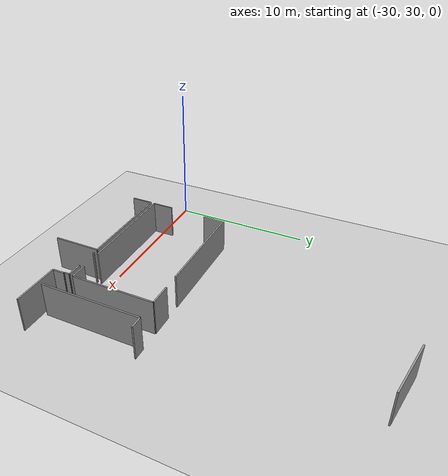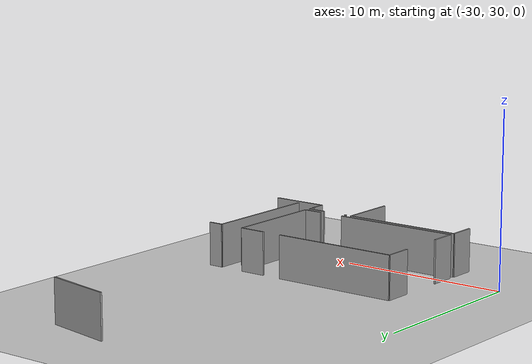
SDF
<sdf version="1.6">
 <world name="default">
  <model name="ground_plane">
   <static>1</static>
   <link name="link">
    <collision name="collision">
     <geometry><plane><normal>0 0 1</normal><size>100 100</size></plane></geometry>
     <surface><friction><ode><mu>100</mu><mu2>50</mu2></ode></friction></surface>
    </collision>
    <visual name="visual">
     <cast_shadows>0</cast_shadows>
     <geometry><plane><normal>0 0 1</normal><size>100 100</size></plane></geometry>
     <material>
      <script><uri>file://media/materials/scripts/gazebo.material</uri><name>Gazebo/Grey</name></script>
     </material>
    </visual>
   </link>
  </model>
  <model name="0510045926_A-40">
   <static>1</static>
   <link name="Wall_990">
    <collision name="Wall_990_Collision">
     <geometry><box><size>3.97220839666 0.1 2.5</size></box></geometry>
     <pose>1.98610419833 0 1.25 0 0 0</pose>
    </collision>
    <visual name="Wall_990_Visual">
     <pose>1.98610419833 0 1.25 0 0 0</pose>
     <geometry><box><size>3.97220839666 0.1 2.5</size></box></geometry>
     <material>
      <script><uri>file://media/materials/scripts/gazebo.material</uri><name>Gazebo/Grey</name></script>
      <ambient>1 1 1 1</ambient>
     </material>
    </visual>
    <pose>118.386653383 -51.8406680924 0 0 0 2.95493750966</pose>
   </link>
   <link name="Wall_993">
    <collision name="Wall_993_Collision">
     <geometry><box><size>1.54128300642 0.1 2.5</size></box></geometry>
     <pose>0.770641503208 0 1.25 0 0 0</pose>
    </collision>
    <visual name="Wall_993_Visual">
     <pose>0.770641503208 0 1.25 0 0 0</pose>
     <geometry><box><size>1.54128300642 0.1 2.5</size></box></geometry>
     <material>
      <script><uri>file://media/materials/scripts/gazebo.material</uri><name>Gazebo/Grey</name></script>
      <ambient>1 1 1 1</ambient>
     </material>
    </visual>
    <pose>107.656561939 -71.8743011619 0 0 0 1.57079632679</pose>
   </link>
   <link name="Wall_994">
    <collision name="Wall_994_Collision">
     <geometry><box><size>1.62555605617 0.1 2.5</size></box></geometry>
     <pose>0.812778028087 0 1.25 0 0 0</pose>
    </collision>
    <visual name="Wall_994_Visual">
     <pose>0.812778028087 0 1.25 0 0 0</pose>
     <geometry><box><size>1.62555605617 0.1 2.5</size></box></geometry>
     <material>
      <script><uri>file://media/materials/scripts/gazebo.material</uri><name>Gazebo/Grey</name></script>
      <ambient>1 1 1 1</ambient>
     </material>
    </visual>
    <pose>107.656561939 -67.621050494 0 0 0 1.57079632679</pose>
   </link>
   <link name="Wall_995">
    <collision name="Wall_995_Collision">
     <geometry><box><size>7.36678448817 0.1 2.5</size></box></geometry>
     <pose>3.68339224409 0 1.25 0 0 0</pose>
    </collision>
    <visual name="Wall_995_Visual">
     <pose>3.68339224409 0 1.25 0 0 0</pose>
     <geometry><box><size>7.36678448817 0.1 2.5</size></box></geometry>
     <material>
      <script><uri>file://media/materials/scripts/gazebo.material</uri><name>Gazebo/Grey</name></script>
      <ambient>1 1 1 1</ambient>
     </material>
    </visual>
    <pose>107.656561939 -65.9954944379 0 0 0 0.0</pose>
   </link>
   <link name="Wall_996">
    <collision name="Wall_996_Collision">
     <geometry><box><size>1.54407518578 0.1 2.5</size></box></geometry>
     <pose>0.772037592888 0 1.25 0 0 0</pose>
    </collision>
    <visual name="Wall_996_Visual">
     <pose>0.772037592888 0 1.25 0 0 0</pose>
     <geometry><box><size>1.54407518578 0.1 2.5</size></box></geometry>
     <material>
      <script><uri>file://media/materials/scripts/gazebo.material</uri><name>Gazebo/Grey</name></script>
      <ambient>1 1 1 1</ambient>
     </material>
    </visual>
    <pose>116.190985068 -65.9954944379 0 0 0 0.0</pose>
   </link>
   <link name="Wall_997">
    <collision name="Wall_997_Collision">
     <geometry><box><size>5.86281515138 0.1 2.5</size></box></geometry>
     <pose>2.93140757569 0 1.25 0 0 0</pose>
    </collision>
    <visual name="Wall_997_Visual">
     <pose>2.93140757569 0 1.25 0 0 0</pose>
     <geometry><box><size>5.86281515138 0.1 2.5</size></box></geometry>
     <material>
      <script><uri>file://media/materials/scripts/gazebo.material</uri><name>Gazebo/Grey</name></script>
      <ambient>1 1 1 1</ambient>
     </material>
    </visual>
    <pose>117.735060254 -65.9954944379 0 0 0 -1.57079632679</pose>
   </link>
   <link name="Wall_998">
    <collision name="Wall_998_Collision">
     <geometry><box><size>1.11890241968 0.1 2.5</size></box></geometry>
     <pose>0.559451209839 0 1.25 0 0 0</pose>
    </collision>
    <visual name="Wall_998_Visual">
     <pose>0.559451209839 0 1.25 0 0 0</pose>
     <geometry><box><size>1.11890241968 0.1 2.5</size></box></geometry>
     <material>
      <script><uri>file://media/materials/scripts/gazebo.material</uri><name>Gazebo/Grey</name></script>
      <ambient>1 1 1 1</ambient>
     </material>
    </visual>
    <pose>117.735060254 -71.8583095892 0 0 0 3.14159265359</pose>
   </link>
   <link name="Wall_999">
    <collision name="Wall_999_Collision">
     <geometry><box><size>7.45462837323 0.1 2.5</size></box></geometry>
     <pose>3.72731418662 0 1.25 0 0 0</pose>
    </collision>
    <visual name="Wall_999_Visual">
     <pose>3.72731418662 0 1.25 0 0 0</pose>
     <geometry><box><size>7.45462837323 0.1 2.5</size></box></geometry>
     <material>
      <script><uri>file://media/materials/scripts/gazebo.material</uri><name>Gazebo/Grey</name></script>
      <ambient>1 1 1 1</ambient>
     </material>
    </visual>
    <pose>115.11117316 -71.8583095892 0 0 0 -3.13944746483</pose>
   </link>
   <link name="Wall_1000">
    <collision name="Wall_1000_Collision">
     <geometry><box><size>7.11295000095 0.1 2.5</size></box></geometry>
     <pose>3.55647500048 0 1.25 0 0 0</pose>
    </collision>
    <visual name="Wall_1000_Visual">
     <pose>3.55647500048 0 1.25 0 0 0</pose>
     <geometry><box><size>7.11295000095 0.1 2.5</size></box></geometry>
     <material>
      <script><uri>file://media/materials/scripts/gazebo.material</uri><name>Gazebo/Grey</name></script>
      <ambient>1 1 1 1</ambient>
     </material>
    </visual>
    <pose>119.207554114 -73.1160594734 0 0 0 1.57079632679</pose>
   </link>
   <link name="Wall_1001">
    <collision name="Wall_1001_Collision">
     <geometry><box><size>0.848568690785 0.1 2.5</size></box></geometry>
     <pose>0.424284345393 0 1.25 0 0 0</pose>
    </collision>
    <visual name="Wall_1001_Visual">
     <pose>0.424284345393 0 1.25 0 0 0</pose>
     <geometry><box><size>0.848568690785 0.1 2.5</size></box></geometry>
     <material>
      <script><uri>file://media/materials/scripts/gazebo.material</uri><name>Gazebo/Grey</name></script>
      <ambient>1 1 1 1</ambient>
     </material>
    </visual>
    <pose>119.207554114 -66.0031094725 0 0 0 0.0</pose>
   </link>
   <link name="Wall_1013">
    <collision name="Wall_1013_Collision">
     <geometry><box><size>1.55499006873 0.1 2.5</size></box></geometry>
     <pose>0.777495034363 0 1.25 0 0 0</pose>
    </collision>
    <visual name="Wall_1013_Visual">
     <pose>0.777495034363 0 1.25 0 0 0</pose>
     <geometry><box><size>1.55499006873 0.1 2.5</size></box></geometry>
     <material>
      <script><uri>file://media/materials/scripts/gazebo.material</uri><name>Gazebo/Grey</name></script>
      <ambient>1 1 1 1</ambient>
     </material>
    </visual>
    <pose>107.625086462 -73.7483611811 0 0 0 1.57079632679</pose>
   </link>
   <link name="Wall_1014">
    <collision name="Wall_1014_Collision">
     <geometry><box><size>7.06116776556 0.1 2.5</size></box></geometry>
     <pose>3.53058388278 0 1.25 0 0 0</pose>
    </collision>
    <visual name="Wall_1014_Visual">
     <pose>3.53058388278 0 1.25 0 0 0</pose>
     <geometry><box><size>7.06116776556 0.1 2.5</size></box></geometry>
     <material>
      <script><uri>file://media/materials/scripts/gazebo.material</uri><name>Gazebo/Grey</name></script>
      <ambient>1 1 1 1</ambient>
     </material>
    </visual>
    <pose>107.625086462 -72.1933711124 0 0 0 0.0</pose>
   </link>
   <link name="Wall_1015">
    <collision name="Wall_1015_Collision">
     <geometry><box><size>3.35467658313 0.1 2.5</size></box></geometry>
     <pose>1.67733829157 0 1.25 0 0 0</pose>
    </collision>
    <visual name="Wall_1015_Visual">
     <pose>1.67733829157 0 1.25 0 0 0</pose>
     <geometry><box><size>3.35467658313 0.1 2.5</size></box></geometry>
     <material>
      <script><uri>file://media/materials/scripts/gazebo.material</uri><name>Gazebo/Grey</name></script>
      <ambient>1 1 1 1</ambient>
     </material>
    </visual>
    <pose>114.686254228 -72.1933711124 0 0 0 -1.57079632679</pose>
   </link>
   <link name="Wall_1026">
    <collision name="Wall_1026_Collision">
     <geometry><box><size>0.103818305274 0.1 2.5</size></box></geometry>
     <pose>0.051909152637 0 1.25 0 0 0</pose>
    </collision>
    <visual name="Wall_1026_Visual">
     <pose>0.051909152637 0 1.25 0 0 0</pose>
     <geometry><box><size>0.103818305274 0.1 2.5</size></box></geometry>
     <material>
      <script><uri>file://media/materials/scripts/gazebo.material</uri><name>Gazebo/Grey</name></script>
      <ambient>1 1 1 1</ambient>
     </material>
    </visual>
    <pose>115.032992137 -72.2020014849 0 0 0 0.0</pose>
   </link>
   <link name="Wall_1027">
    <collision name="Wall_1027_Collision">
     <geometry><box><size>1.03843688723 0.1 2.5</size></box></geometry>
     <pose>0.519218443614 0 1.25 0 0 0</pose>
    </collision>
    <visual name="Wall_1027_Visual">
     <pose>0.519218443614 0 1.25 0 0 0</pose>
     <geometry><box><size>1.03843688723 0.1 2.5</size></box></geometry>
     <material>
      <script><uri>file://media/materials/scripts/gazebo.material</uri><name>Gazebo/Grey</name></script>
      <ambient>1 1 1 1</ambient>
     </material>
    </visual>
    <pose>116.634180083 -72.2020014849 0 0 0 0.0</pose>
   </link>
   <link name="Wall_1028">
    <collision name="Wall_1028_Collision">
     <geometry><box><size>0.384559248142 0.1 2.5</size></box></geometry>
     <pose>0.192279624071 0 1.25 0 0 0</pose>
    </collision>
    <visual name="Wall_1028_Visual">
     <pose>0.192279624071 0 1.25 0 0 0</pose>
     <geometry><box><size>0.384559248142 0.1 2.5</size></box></geometry>
     <material>
      <script><uri>file://media/materials/scripts/gazebo.material</uri><name>Gazebo/Grey</name></script>
      <ambient>1 1 1 1</ambient>
     </material>
    </visual>
    <pose>117.67261697 -72.2020014849 0 0 0 -1.57079632679</pose>
   </link>
   <link name="Wall_1029">
    <collision name="Wall_1029_Collision">
     <geometry><box><size>0.0505130629573 0.1 2.5</size></box></geometry>
     <pose>0.0252565314786 0 1.25 0 0 0</pose>
    </collision>
    <visual name="Wall_1029_Visual">
     <pose>0.0252565314786 0 1.25 0 0 0</pose>
     <geometry><box><size>0.0505130629573 0.1 2.5</size></box></geometry>
     <material>
      <script><uri>file://media/materials/scripts/gazebo.material</uri><name>Gazebo/Grey</name></script>
      <ambient>1 1 1 1</ambient>
     </material>
    </visual>
    <pose>117.67261697 -72.5865607331 0 0 0 0.0</pose>
   </link>
   <link name="Wall_1030">
    <collision name="Wall_1030_Collision">
     <geometry><box><size>0.856945228864 0.1 2.5</size></box></geometry>
     <pose>0.428472614432 0 1.25 0 0 0</pose>
    </collision>
    <visual name="Wall_1030_Visual">
     <pose>0.428472614432 0 1.25 0 0 0</pose>
     <geometry><box><size>0.856945228864 0.1 2.5</size></box></geometry>
     <material>
      <script><uri>file://media/materials/scripts/gazebo.material</uri><name>Gazebo/Grey</name></script>
      <ambient>1 1 1 1</ambient>
     </material>
    </visual>
    <pose>117.723130033 -72.5865607331 0 0 0 -1.57079632679</pose>
   </link>
   <link name="Wall_1031">
    <collision name="Wall_1031_Collision">
     <geometry><box><size>3.2678651885 0.1 2.5</size></box></geometry>
     <pose>1.63393259425 0 1.25 0 0 0</pose>
    </collision>
    <visual name="Wall_1031_Visual">
     <pose>1.63393259425 0 1.25 0 0 0</pose>
     <geometry><box><size>3.2678651885 0.1 2.5</size></box></geometry>
     <material>
      <script><uri>file://media/materials/scripts/gazebo.material</uri><name>Gazebo/Grey</name></script>
      <ambient>1 1 1 1</ambient>
     </material>
    </visual>
    <pose>117.723130033 -73.4435059619 0 0 0 0.0</pose>
   </link>
   <pose>-133.95 101.113233661 0 0 0 0</pose>
  </model>
 </world>
</sdf>
